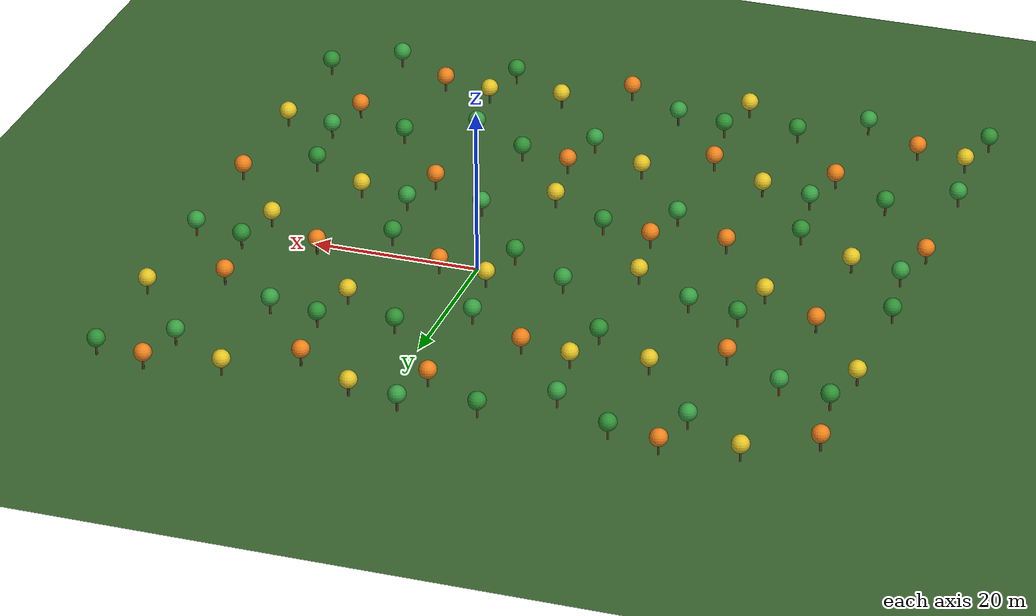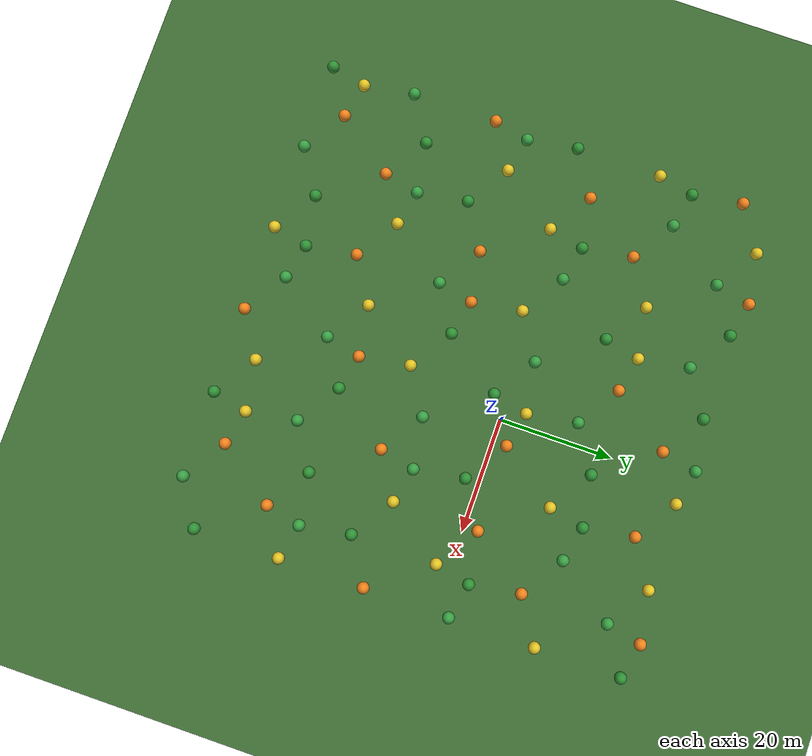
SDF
<sdf version="1.7">
 <world name="city_world">
  <model name="ground_plane">
   <static>true</static>
   <link name="link">
    <collision name="collision">
     <geometry><plane><normal>0 0 1</normal><size>300 300</size></plane></geometry>
     <surface><friction><ode><mu>100</mu><mu2>50</mu2></ode></friction></surface>
    </collision>
    <visual name="visual">
     <geometry><plane><normal>0 0 1</normal><size>300 300</size></plane></geometry>
     <material><ambient>0.24 0.42 0.20 1</ambient><diffuse>0.24 0.42 0.20 1</diffuse></material>
    </visual>
   </link>
  </model>
  <model name="city_trees">
   <static>true</static>
   <link name="link">
    <visual name="tree_trunk_0">
     <pose>-48.80 -47.40 0.84 0 0 0</pose>
     <geometry><cylinder><radius>0.12</radius><length>1.6</length></cylinder></geometry>
     <material><ambient>0.32 0.20 0.12 1</ambient><diffuse>0.32 0.20 0.12 1</diffuse></material>
    </visual>
    <visual name="tree_canopy_0">
     <pose>-48.80 -47.40 2.20 0 0 0</pose>
     <geometry><sphere><radius>1.05</radius></sphere></geometry>
     <material><ambient>0.16 0.52 0.18 1</ambient><diffuse>0.18 0.56 0.20 1</diffuse></material>
    </visual>
    <visual name="tree_trunk_1">
     <pose>-41.20 -42.60 0.84 0 0 0</pose>
     <geometry><cylinder><radius>0.12</radius><length>1.6</length></cylinder></geometry>
     <material><ambient>0.32 0.20 0.12 1</ambient><diffuse>0.32 0.20 0.12 1</diffuse></material>
    </visual>
    <visual name="tree_canopy_1">
     <pose>-41.20 -42.60 2.20 0 0 0</pose>
     <geometry><sphere><radius>1.05</radius></sphere></geometry>
     <material><ambient>0.88 0.46 0.08 1</ambient><diffuse>0.92 0.50 0.10 1</diffuse></material>
    </visual>
    <visual name="tree_trunk_2">
     <pose>-47.40 -41.20 0.84 0 0 0</pose>
     <geometry><cylinder><radius>0.12</radius><length>1.6</length></cylinder></geometry>
     <material><ambient>0.32 0.20 0.12 1</ambient><diffuse>0.32 0.20 0.12 1</diffuse></material>
    </visual>
    <visual name="tree_canopy_2">
     <pose>-47.40 -41.20 2.20 0 0 0</pose>
     <geometry><sphere><radius>1.05</radius></sphere></geometry>
     <material><ambient>0.85 0.72 0.12 1</ambient><diffuse>0.88 0.76 0.14 1</diffuse></material>
    </visual>
    <visual name="tree_trunk_3">
     <pose>-48.80 -32.40 0.84 0 0 0</pose>
     <geometry><cylinder><radius>0.12</radius><length>1.6</length></cylinder></geometry>
     <material><ambient>0.32 0.20 0.12 1</ambient><diffuse>0.32 0.20 0.12 1</diffuse></material>
    </visual>
    <visual name="tree_canopy_3">
     <pose>-48.80 -32.40 2.20 0 0 0</pose>
     <geometry><sphere><radius>1.05</radius></sphere></geometry>
     <material><ambient>0.20 0.58 0.24 1</ambient><diffuse>0.22 0.62 0.26 1</diffuse></material>
    </visual>
    <visual name="tree_trunk_4">
     <pose>-41.20 -27.60 0.84 0 0 0</pose>
     <geometry><cylinder><radius>0.12</radius><length>1.6</length></cylinder></geometry>
     <material><ambient>0.32 0.20 0.12 1</ambient><diffuse>0.32 0.20 0.12 1</diffuse></material>
    </visual>
    <visual name="tree_canopy_4">
     <pose>-41.20 -27.60 2.20 0 0 0</pose>
     <geometry><sphere><radius>1.05</radius></sphere></geometry>
     <material><ambient>0.16 0.52 0.18 1</ambient><diffuse>0.18 0.56 0.20 1</diffuse></material>
    </visual>
    <visual name="tree_trunk_5">
     <pose>-48.80 -17.40 0.84 0 0 0</pose>
     <geometry><cylinder><radius>0.12</radius><length>1.6</length></cylinder></geometry>
     <material><ambient>0.32 0.20 0.12 1</ambient><diffuse>0.32 0.20 0.12 1</diffuse></material>
    </visual>
    <visual name="tree_canopy_5">
     <pose>-48.80 -17.40 2.20 0 0 0</pose>
     <geometry><sphere><radius>1.05</radius></sphere></geometry>
     <material><ambient>0.88 0.46 0.08 1</ambient><diffuse>0.92 0.50 0.10 1</diffuse></material>
    </visual>
    <visual name="tree_trunk_6">
     <pose>-41.20 -12.60 0.84 0 0 0</pose>
     <geometry><cylinder><radius>0.12</radius><length>1.6</length></cylinder></geometry>
     <material><ambient>0.32 0.20 0.12 1</ambient><diffuse>0.32 0.20 0.12 1</diffuse></material>
    </visual>
    <visual name="tree_canopy_6">
     <pose>-41.20 -12.60 2.20 0 0 0</pose>
     <geometry><sphere><radius>1.05</radius></sphere></geometry>
     <material><ambient>0.85 0.72 0.12 1</ambient><diffuse>0.88 0.76 0.14 1</diffuse></material>
    </visual>
    <visual name="tree_trunk_7">
     <pose>-47.40 -11.20 0.84 0 0 0</pose>
     <geometry><cylinder><radius>0.12</radius><length>1.6</length></cylinder></geometry>
     <material><ambient>0.32 0.20 0.12 1</ambient><diffuse>0.32 0.20 0.12 1</diffuse></material>
    </visual>
    <visual name="tree_canopy_7">
     <pose>-47.40 -11.20 2.20 0 0 0</pose>
     <geometry><sphere><radius>1.05</radius></sphere></geometry>
     <material><ambient>0.20 0.58 0.24 1</ambient><diffuse>0.22 0.62 0.26 1</diffuse></material>
    </visual>
    <visual name="tree_trunk_8">
     <pose>-48.80 -2.40 0.84 0 0 0</pose>
     <geometry><cylinder><radius>0.12</radius><length>1.6</length></cylinder></geometry>
     <material><ambient>0.32 0.20 0.12 1</ambient><diffuse>0.32 0.20 0.12 1</diffuse></material>
    </visual>
    <visual name="tree_canopy_8">
     <pose>-48.80 -2.40 2.20 0 0 0</pose>
     <geometry><sphere><radius>1.05</radius></sphere></geometry>
     <material><ambient>0.16 0.52 0.18 1</ambient><diffuse>0.18 0.56 0.20 1</diffuse></material>
    </visual>
    <visual name="tree_trunk_9">
     <pose>-41.20 2.40 0.84 0 0 0</pose>
     <geometry><cylinder><radius>0.12</radius><length>1.6</length></cylinder></geometry>
     <material><ambient>0.32 0.20 0.12 1</ambient><diffuse>0.32 0.20 0.12 1</diffuse></material>
    </visual>
    <visual name="tree_canopy_9">
     <pose>-41.20 2.40 2.20 0 0 0</pose>
     <geometry><sphere><radius>1.05</radius></sphere></geometry>
     <material><ambient>0.88 0.46 0.08 1</ambient><diffuse>0.92 0.50 0.10 1</diffuse></material>
    </visual>
    <visual name="tree_trunk_10">
     <pose>-48.80 12.60 0.84 0 0 0</pose>
     <geometry><cylinder><radius>0.12</radius><length>1.6</length></cylinder></geometry>
     <material><ambient>0.32 0.20 0.12 1</ambient><diffuse>0.32 0.20 0.12 1</diffuse></material>
    </visual>
    <visual name="tree_canopy_10">
     <pose>-48.80 12.60 2.20 0 0 0</pose>
     <geometry><sphere><radius>1.05</radius></sphere></geometry>
     <material><ambient>0.85 0.72 0.12 1</ambient><diffuse>0.88 0.76 0.14 1</diffuse></material>
    </visual>
    <visual name="tree_trunk_11">
     <pose>-41.20 17.40 0.84 0 0 0</pose>
     <geometry><cylinder><radius>0.12</radius><length>1.6</length></cylinder></geometry>
     <material><ambient>0.32 0.20 0.12 1</ambient><diffuse>0.32 0.20 0.12 1</diffuse></material>
    </visual>
    <visual name="tree_canopy_11">
     <pose>-41.20 17.40 2.20 0 0 0</pose>
     <geometry><sphere><radius>1.05</radius></sphere></geometry>
     <material><ambient>0.20 0.58 0.24 1</ambient><diffuse>0.22 0.62 0.26 1</diffuse></material>
    </visual>
    <visual name="tree_trunk_12">
     <pose>-47.40 18.80 0.84 0 0 0</pose>
     <geometry><cylinder><radius>0.12</radius><length>1.6</length></cylinder></geometry>
     <material><ambient>0.32 0.20 0.12 1</ambient><diffuse>0.32 0.20 0.12 1</diffuse></material>
    </visual>
    <visual name="tree_canopy_12">
     <pose>-47.40 18.80 2.20 0 0 0</pose>
     <geometry><sphere><radius>1.05</radius></sphere></geometry>
     <material><ambient>0.16 0.52 0.18 1</ambient><diffuse>0.18 0.56 0.20 1</diffuse></material>
    </visual>
    <visual name="tree_trunk_13">
     <pose>-48.80 27.60 0.84 0 0 0</pose>
     <geometry><cylinder><radius>0.12</radius><length>1.6</length></cylinder></geometry>
     <material><ambient>0.32 0.20 0.12 1</ambient><diffuse>0.32 0.20 0.12 1</diffuse></material>
    </visual>
    <visual name="tree_canopy_13">
     <pose>-48.80 27.60 2.20 0 0 0</pose>
     <geometry><sphere><radius>1.05</radius></sphere></geometry>
     <material><ambient>0.88 0.46 0.08 1</ambient><diffuse>0.92 0.50 0.10 1</diffuse></material>
    </visual>
    <visual name="tree_trunk_14">
     <pose>-41.20 32.40 0.84 0 0 0</pose>
     <geometry><cylinder><radius>0.12</radius><length>1.6</length></cylinder></geometry>
     <material><ambient>0.32 0.20 0.12 1</ambient><diffuse>0.32 0.20 0.12 1</diffuse></material>
    </visual>
    <visual name="tree_canopy_14">
     <pose>-41.20 32.40 2.20 0 0 0</pose>
     <geometry><sphere><radius>1.05</radius></sphere></geometry>
     <material><ambient>0.85 0.72 0.12 1</ambient><diffuse>0.88 0.76 0.14 1</diffuse></material>
    </visual>
    <visual name="tree_trunk_15">
     <pose>-33.80 -47.40 0.84 0 0 0</pose>
     <geometry><cylinder><radius>0.12</radius><length>1.6</length></cylinder></geometry>
     <material><ambient>0.32 0.20 0.12 1</ambient><diffuse>0.32 0.20 0.12 1</diffuse></material>
    </visual>
    <visual name="tree_canopy_15">
     <pose>-33.80 -47.40 2.20 0 0 0</pose>
     <geometry><sphere><radius>1.05</radius></sphere></geometry>
     <material><ambient>0.20 0.58 0.24 1</ambient><diffuse>0.22 0.62 0.26 1</diffuse></material>
    </visual>
    <visual name="tree_trunk_16">
     <pose>-26.20 -42.60 0.84 0 0 0</pose>
     <geometry><cylinder><radius>0.12</radius><length>1.6</length></cylinder></geometry>
     <material><ambient>0.32 0.20 0.12 1</ambient><diffuse>0.32 0.20 0.12 1</diffuse></material>
    </visual>
    <visual name="tree_canopy_16">
     <pose>-26.20 -42.60 2.20 0 0 0</pose>
     <geometry><sphere><radius>1.05</radius></sphere></geometry>
     <material><ambient>0.16 0.52 0.18 1</ambient><diffuse>0.18 0.56 0.20 1</diffuse></material>
    </visual>
    <visual name="tree_trunk_17">
     <pose>-33.80 -32.40 0.84 0 0 0</pose>
     <geometry><cylinder><radius>0.12</radius><length>1.6</length></cylinder></geometry>
     <material><ambient>0.32 0.20 0.12 1</ambient><diffuse>0.32 0.20 0.12 1</diffuse></material>
    </visual>
    <visual name="tree_canopy_17">
     <pose>-33.80 -32.40 2.20 0 0 0</pose>
     <geometry><sphere><radius>1.05</radius></sphere></geometry>
     <material><ambient>0.88 0.46 0.08 1</ambient><diffuse>0.92 0.50 0.10 1</diffuse></material>
    </visual>
    <visual name="tree_trunk_18">
     <pose>-26.20 -27.60 0.84 0 0 0</pose>
     <geometry><cylinder><radius>0.12</radius><length>1.6</length></cylinder></geometry>
     <material><ambient>0.32 0.20 0.12 1</ambient><diffuse>0.32 0.20 0.12 1</diffuse></material>
    </visual>
    <visual name="tree_canopy_18">
     <pose>-26.20 -27.60 2.20 0 0 0</pose>
     <geometry><sphere><radius>1.05</radius></sphere></geometry>
     <material><ambient>0.85 0.72 0.12 1</ambient><diffuse>0.88 0.76 0.14 1</diffuse></material>
    </visual>
    <visual name="tree_trunk_19">
     <pose>-32.40 -26.20 0.84 0 0 0</pose>
     <geometry><cylinder><radius>0.12</radius><length>1.6</length></cylinder></geometry>
     <material><ambient>0.32 0.20 0.12 1</ambient><diffuse>0.32 0.20 0.12 1</diffuse></material>
    </visual>
    <visual name="tree_canopy_19">
     <pose>-32.40 -26.20 2.20 0 0 0</pose>
     <geometry><sphere><radius>1.05</radius></sphere></geometry>
     <material><ambient>0.20 0.58 0.24 1</ambient><diffuse>0.22 0.62 0.26 1</diffuse></material>
    </visual>
    <visual name="tree_trunk_20">
     <pose>-33.80 -17.40 0.84 0 0 0</pose>
     <geometry><cylinder><radius>0.12</radius><length>1.6</length></cylinder></geometry>
     <material><ambient>0.32 0.20 0.12 1</ambient><diffuse>0.32 0.20 0.12 1</diffuse></material>
    </visual>
    <visual name="tree_canopy_20">
     <pose>-33.80 -17.40 2.20 0 0 0</pose>
     <geometry><sphere><radius>1.05</radius></sphere></geometry>
     <material><ambient>0.16 0.52 0.18 1</ambient><diffuse>0.18 0.56 0.20 1</diffuse></material>
    </visual>
    <visual name="tree_trunk_21">
     <pose>-26.20 -12.60 0.84 0 0 0</pose>
     <geometry><cylinder><radius>0.12</radius><length>1.6</length></cylinder></geometry>
     <material><ambient>0.32 0.20 0.12 1</ambient><diffuse>0.32 0.20 0.12 1</diffuse></material>
    </visual>
    <visual name="tree_canopy_21">
     <pose>-26.20 -12.60 2.20 0 0 0</pose>
     <geometry><sphere><radius>1.05</radius></sphere></geometry>
     <material><ambient>0.88 0.46 0.08 1</ambient><diffuse>0.92 0.50 0.10 1</diffuse></material>
    </visual>
    <visual name="tree_trunk_22">
     <pose>-33.80 -2.40 0.84 0 0 0</pose>
     <geometry><cylinder><radius>0.12</radius><length>1.6</length></cylinder></geometry>
     <material><ambient>0.32 0.20 0.12 1</ambient><diffuse>0.32 0.20 0.12 1</diffuse></material>
    </visual>
    <visual name="tree_canopy_22">
     <pose>-33.80 -2.40 2.20 0 0 0</pose>
     <geometry><sphere><radius>1.05</radius></sphere></geometry>
     <material><ambient>0.85 0.72 0.12 1</ambient><diffuse>0.88 0.76 0.14 1</diffuse></material>
    </visual>
    <visual name="tree_trunk_23">
     <pose>-26.20 2.40 0.84 0 0 0</pose>
     <geometry><cylinder><radius>0.12</radius><length>1.6</length></cylinder></geometry>
     <material><ambient>0.32 0.20 0.12 1</ambient><diffuse>0.32 0.20 0.12 1</diffuse></material>
    </visual>
    <visual name="tree_canopy_23">
     <pose>-26.20 2.40 2.20 0 0 0</pose>
     <geometry><sphere><radius>1.05</radius></sphere></geometry>
     <material><ambient>0.20 0.58 0.24 1</ambient><diffuse>0.22 0.62 0.26 1</diffuse></material>
    </visual>
    <visual name="tree_trunk_24">
     <pose>-32.40 3.80 0.84 0 0 0</pose>
     <geometry><cylinder><radius>0.12</radius><length>1.6</length></cylinder></geometry>
     <material><ambient>0.32 0.20 0.12 1</ambient><diffuse>0.32 0.20 0.12 1</diffuse></material>
    </visual>
    <visual name="tree_canopy_24">
     <pose>-32.40 3.80 2.20 0 0 0</pose>
     <geometry><sphere><radius>1.05</radius></sphere></geometry>
     <material><ambient>0.16 0.52 0.18 1</ambient><diffuse>0.18 0.56 0.20 1</diffuse></material>
    </visual>
    <visual name="tree_trunk_25">
     <pose>-33.80 12.60 0.84 0 0 0</pose>
     <geometry><cylinder><radius>0.12</radius><length>1.6</length></cylinder></geometry>
     <material><ambient>0.32 0.20 0.12 1</ambient><diffuse>0.32 0.20 0.12 1</diffuse></material>
    </visual>
    <visual name="tree_canopy_25">
     <pose>-33.80 12.60 2.20 0 0 0</pose>
     <geometry><sphere><radius>1.05</radius></sphere></geometry>
     <material><ambient>0.88 0.46 0.08 1</ambient><diffuse>0.92 0.50 0.10 1</diffuse></material>
    </visual>
    <visual name="tree_trunk_26">
     <pose>-26.20 17.40 0.84 0 0 0</pose>
     <geometry><cylinder><radius>0.12</radius><length>1.6</length></cylinder></geometry>
     <material><ambient>0.32 0.20 0.12 1</ambient><diffuse>0.32 0.20 0.12 1</diffuse></material>
    </visual>
    <visual name="tree_canopy_26">
     <pose>-26.20 17.40 2.20 0 0 0</pose>
     <geometry><sphere><radius>1.05</radius></sphere></geometry>
     <material><ambient>0.85 0.72 0.12 1</ambient><diffuse>0.88 0.76 0.14 1</diffuse></material>
    </visual>
    <visual name="tree_trunk_27">
     <pose>-33.80 27.60 0.84 0 0 0</pose>
     <geometry><cylinder><radius>0.12</radius><length>1.6</length></cylinder></geometry>
     <material><ambient>0.32 0.20 0.12 1</ambient><diffuse>0.32 0.20 0.12 1</diffuse></material>
    </visual>
    <visual name="tree_canopy_27">
     <pose>-33.80 27.60 2.20 0 0 0</pose>
     <geometry><sphere><radius>1.05</radius></sphere></geometry>
     <material><ambient>0.20 0.58 0.24 1</ambient><diffuse>0.22 0.62 0.26 1</diffuse></material>
    </visual>
    <visual name="tree_trunk_28">
     <pose>-26.20 32.40 0.84 0 0 0</pose>
     <geometry><cylinder><radius>0.12</radius><length>1.6</length></cylinder></geometry>
     <material><ambient>0.32 0.20 0.12 1</ambient><diffuse>0.32 0.20 0.12 1</diffuse></material>
    </visual>
    <visual name="tree_canopy_28">
     <pose>-26.20 32.40 2.20 0 0 0</pose>
     <geometry><sphere><radius>1.05</radius></sphere></geometry>
     <material><ambient>0.16 0.52 0.18 1</ambient><diffuse>0.18 0.56 0.20 1</diffuse></material>
    </visual>
    <visual name="tree_trunk_29">
     <pose>-32.40 33.80 0.84 0 0 0</pose>
     <geometry><cylinder><radius>0.12</radius><length>1.6</length></cylinder></geometry>
     <material><ambient>0.32 0.20 0.12 1</ambient><diffuse>0.32 0.20 0.12 1</diffuse></material>
    </visual>
    <visual name="tree_canopy_29">
     <pose>-32.40 33.80 2.20 0 0 0</pose>
     <geometry><sphere><radius>1.05</radius></sphere></geometry>
     <material><ambient>0.88 0.46 0.08 1</ambient><diffuse>0.92 0.50 0.10 1</diffuse></material>
    </visual>
    <visual name="tree_trunk_30">
     <pose>-18.80 -47.40 0.84 0 0 0</pose>
     <geometry><cylinder><radius>0.12</radius><length>1.6</length></cylinder></geometry>
     <material><ambient>0.32 0.20 0.12 1</ambient><diffuse>0.32 0.20 0.12 1</diffuse></material>
    </visual>
    <visual name="tree_canopy_30">
     <pose>-18.80 -47.40 2.20 0 0 0</pose>
     <geometry><sphere><radius>1.05</radius></sphere></geometry>
     <material><ambient>0.85 0.72 0.12 1</ambient><diffuse>0.88 0.76 0.14 1</diffuse></material>
    </visual>
    <visual name="tree_trunk_31">
     <pose>-11.20 -42.60 0.84 0 0 0</pose>
     <geometry><cylinder><radius>0.12</radius><length>1.6</length></cylinder></geometry>
     <material><ambient>0.32 0.20 0.12 1</ambient><diffuse>0.32 0.20 0.12 1</diffuse></material>
    </visual>
    <visual name="tree_canopy_31">
     <pose>-11.20 -42.60 2.20 0 0 0</pose>
     <geometry><sphere><radius>1.05</radius></sphere></geometry>
     <material><ambient>0.20 0.58 0.24 1</ambient><diffuse>0.22 0.62 0.26 1</diffuse></material>
    </visual>
    <visual name="tree_trunk_32">
     <pose>-17.40 -41.20 0.84 0 0 0</pose>
     <geometry><cylinder><radius>0.12</radius><length>1.6</length></cylinder></geometry>
     <material><ambient>0.32 0.20 0.12 1</ambient><diffuse>0.32 0.20 0.12 1</diffuse></material>
    </visual>
    <visual name="tree_canopy_32">
     <pose>-17.40 -41.20 2.20 0 0 0</pose>
     <geometry><sphere><radius>1.05</radius></sphere></geometry>
     <material><ambient>0.16 0.52 0.18 1</ambient><diffuse>0.18 0.56 0.20 1</diffuse></material>
    </visual>
    <visual name="tree_trunk_33">
     <pose>-18.80 -32.40 0.84 0 0 0</pose>
     <geometry><cylinder><radius>0.12</radius><length>1.6</length></cylinder></geometry>
     <material><ambient>0.32 0.20 0.12 1</ambient><diffuse>0.32 0.20 0.12 1</diffuse></material>
    </visual>
    <visual name="tree_canopy_33">
     <pose>-18.80 -32.40 2.20 0 0 0</pose>
     <geometry><sphere><radius>1.05</radius></sphere></geometry>
     <material><ambient>0.88 0.46 0.08 1</ambient><diffuse>0.92 0.50 0.10 1</diffuse></material>
    </visual>
    <visual name="tree_trunk_34">
     <pose>-11.20 -27.60 0.84 0 0 0</pose>
     <geometry><cylinder><radius>0.12</radius><length>1.6</length></cylinder></geometry>
     <material><ambient>0.32 0.20 0.12 1</ambient><diffuse>0.32 0.20 0.12 1</diffuse></material>
    </visual>
    <visual name="tree_canopy_34">
     <pose>-11.20 -27.60 2.20 0 0 0</pose>
     <geometry><sphere><radius>1.05</radius></sphere></geometry>
     <material><ambient>0.85 0.72 0.12 1</ambient><diffuse>0.88 0.76 0.14 1</diffuse></material>
    </visual>
    <visual name="tree_trunk_35">
     <pose>-18.80 -17.40 0.84 0 0 0</pose>
     <geometry><cylinder><radius>0.12</radius><length>1.6</length></cylinder></geometry>
     <material><ambient>0.32 0.20 0.12 1</ambient><diffuse>0.32 0.20 0.12 1</diffuse></material>
    </visual>
    <visual name="tree_canopy_35">
     <pose>-18.80 -17.40 2.20 0 0 0</pose>
     <geometry><sphere><radius>1.05</radius></sphere></geometry>
     <material><ambient>0.20 0.58 0.24 1</ambient><diffuse>0.22 0.62 0.26 1</diffuse></material>
    </visual>
    <visual name="tree_trunk_36">
     <pose>-11.20 -12.60 0.84 0 0 0</pose>
     <geometry><cylinder><radius>0.12</radius><length>1.6</length></cylinder></geometry>
     <material><ambient>0.32 0.20 0.12 1</ambient><diffuse>0.32 0.20 0.12 1</diffuse></material>
    </visual>
    <visual name="tree_canopy_36">
     <pose>-11.20 -12.60 2.20 0 0 0</pose>
     <geometry><sphere><radius>1.05</radius></sphere></geometry>
     <material><ambient>0.16 0.52 0.18 1</ambient><diffuse>0.18 0.56 0.20 1</diffuse></material>
    </visual>
    <visual name="tree_trunk_37">
     <pose>-17.40 -11.20 0.84 0 0 0</pose>
     <geometry><cylinder><radius>0.12</radius><length>1.6</length></cylinder></geometry>
     <material><ambient>0.32 0.20 0.12 1</ambient><diffuse>0.32 0.20 0.12 1</diffuse></material>
    </visual>
    <visual name="tree_canopy_37">
     <pose>-17.40 -11.20 2.20 0 0 0</pose>
     <geometry><sphere><radius>1.05</radius></sphere></geometry>
     <material><ambient>0.88 0.46 0.08 1</ambient><diffuse>0.92 0.50 0.10 1</diffuse></material>
    </visual>
    <visual name="tree_trunk_38">
     <pose>-18.80 -2.40 0.84 0 0 0</pose>
     <geometry><cylinder><radius>0.12</radius><length>1.6</length></cylinder></geometry>
     <material><ambient>0.32 0.20 0.12 1</ambient><diffuse>0.32 0.20 0.12 1</diffuse></material>
    </visual>
    <visual name="tree_canopy_38">
     <pose>-18.80 -2.40 2.20 0 0 0</pose>
     <geometry><sphere><radius>1.05</radius></sphere></geometry>
     <material><ambient>0.85 0.72 0.12 1</ambient><diffuse>0.88 0.76 0.14 1</diffuse></material>
    </visual>
    <visual name="tree_trunk_39">
     <pose>-11.20 2.40 0.84 0 0 0</pose>
     <geometry><cylinder><radius>0.12</radius><length>1.6</length></cylinder></geometry>
     <material><ambient>0.32 0.20 0.12 1</ambient><diffuse>0.32 0.20 0.12 1</diffuse></material>
    </visual>
    <visual name="tree_canopy_39">
     <pose>-11.20 2.40 2.20 0 0 0</pose>
     <geometry><sphere><radius>1.05</radius></sphere></geometry>
     <material><ambient>0.20 0.58 0.24 1</ambient><diffuse>0.22 0.62 0.26 1</diffuse></material>
    </visual>
    <visual name="tree_trunk_40">
     <pose>-18.80 12.60 0.84 0 0 0</pose>
     <geometry><cylinder><radius>0.12</radius><length>1.6</length></cylinder></geometry>
     <material><ambient>0.32 0.20 0.12 1</ambient><diffuse>0.32 0.20 0.12 1</diffuse></material>
    </visual>
    <visual name="tree_canopy_40">
     <pose>-18.80 12.60 2.20 0 0 0</pose>
     <geometry><sphere><radius>1.05</radius></sphere></geometry>
     <material><ambient>0.16 0.52 0.18 1</ambient><diffuse>0.18 0.56 0.20 1</diffuse></material>
    </visual>
    <visual name="tree_trunk_41">
     <pose>-11.20 17.40 0.84 0 0 0</pose>
     <geometry><cylinder><radius>0.12</radius><length>1.6</length></cylinder></geometry>
     <material><ambient>0.32 0.20 0.12 1</ambient><diffuse>0.32 0.20 0.12 1</diffuse></material>
    </visual>
    <visual name="tree_canopy_41">
     <pose>-11.20 17.40 2.20 0 0 0</pose>
     <geometry><sphere><radius>1.05</radius></sphere></geometry>
     <material><ambient>0.88 0.46 0.08 1</ambient><diffuse>0.92 0.50 0.10 1</diffuse></material>
    </visual>
    <visual name="tree_trunk_42">
     <pose>-17.40 18.80 0.84 0 0 0</pose>
     <geometry><cylinder><radius>0.12</radius><length>1.6</length></cylinder></geometry>
     <material><ambient>0.32 0.20 0.12 1</ambient><diffuse>0.32 0.20 0.12 1</diffuse></material>
    </visual>
    <visual name="tree_canopy_42">
     <pose>-17.40 18.80 2.20 0 0 0</pose>
     <geometry><sphere><radius>1.05</radius></sphere></geometry>
     <material><ambient>0.85 0.72 0.12 1</ambient><diffuse>0.88 0.76 0.14 1</diffuse></material>
    </visual>
    <visual name="tree_trunk_43">
     <pose>-18.80 27.60 0.84 0 0 0</pose>
     <geometry><cylinder><radius>0.12</radius><length>1.6</length></cylinder></geometry>
     <material><ambient>0.32 0.20 0.12 1</ambient><diffuse>0.32 0.20 0.12 1</diffuse></material>
    </visual>
    <visual name="tree_canopy_43">
     <pose>-18.80 27.60 2.20 0 0 0</pose>
     <geometry><sphere><radius>1.05</radius></sphere></geometry>
     <material><ambient>0.20 0.58 0.24 1</ambient><diffuse>0.22 0.62 0.26 1</diffuse></material>
    </visual>
    <visual name="tree_trunk_44">
     <pose>-11.20 32.40 0.84 0 0 0</pose>
     <geometry><cylinder><radius>0.12</radius><length>1.6</length></cylinder></geometry>
     <material><ambient>0.32 0.20 0.12 1</ambient><diffuse>0.32 0.20 0.12 1</diffuse></material>
    </visual>
    <visual name="tree_canopy_44">
     <pose>-11.20 32.40 2.20 0 0 0</pose>
     <geometry><sphere><radius>1.05</radius></sphere></geometry>
     <material><ambient>0.16 0.52 0.18 1</ambient><diffuse>0.18 0.56 0.20 1</diffuse></material>
    </visual>
    <visual name="tree_trunk_45">
     <pose>-3.80 -47.40 0.84 0 0 0</pose>
     <geometry><cylinder><radius>0.12</radius><length>1.6</length></cylinder></geometry>
     <material><ambient>0.32 0.20 0.12 1</ambient><diffuse>0.32 0.20 0.12 1</diffuse></material>
    </visual>
    <visual name="tree_canopy_45">
     <pose>-3.80 -47.40 2.20 0 0 0</pose>
     <geometry><sphere><radius>1.05</radius></sphere></geometry>
     <material><ambient>0.88 0.46 0.08 1</ambient><diffuse>0.92 0.50 0.10 1</diffuse></material>
    </visual>
    <visual name="tree_trunk_46">
     <pose>3.80 -42.60 0.84 0 0 0</pose>
     <geometry><cylinder><radius>0.12</radius><length>1.6</length></cylinder></geometry>
     <material><ambient>0.32 0.20 0.12 1</ambient><diffuse>0.32 0.20 0.12 1</diffuse></material>
    </visual>
    <visual name="tree_canopy_46">
     <pose>3.80 -42.60 2.20 0 0 0</pose>
     <geometry><sphere><radius>1.05</radius></sphere></geometry>
     <material><ambient>0.85 0.72 0.12 1</ambient><diffuse>0.88 0.76 0.14 1</diffuse></material>
    </visual>
    <visual name="tree_trunk_47">
     <pose>-3.80 -32.40 0.84 0 0 0</pose>
     <geometry><cylinder><radius>0.12</radius><length>1.6</length></cylinder></geometry>
     <material><ambient>0.32 0.20 0.12 1</ambient><diffuse>0.32 0.20 0.12 1</diffuse></material>
    </visual>
    <visual name="tree_canopy_47">
     <pose>-3.80 -32.40 2.20 0 0 0</pose>
     <geometry><sphere><radius>1.05</radius></sphere></geometry>
     <material><ambient>0.20 0.58 0.24 1</ambient><diffuse>0.22 0.62 0.26 1</diffuse></material>
    </visual>
    <visual name="tree_trunk_48">
     <pose>3.80 -27.60 0.84 0 0 0</pose>
     <geometry><cylinder><radius>0.12</radius><length>1.6</length></cylinder></geometry>
     <material><ambient>0.32 0.20 0.12 1</ambient><diffuse>0.32 0.20 0.12 1</diffuse></material>
    </visual>
    <visual name="tree_canopy_48">
     <pose>3.80 -27.60 2.20 0 0 0</pose>
     <geometry><sphere><radius>1.05</radius></sphere></geometry>
     <material><ambient>0.16 0.52 0.18 1</ambient><diffuse>0.18 0.56 0.20 1</diffuse></material>
    </visual>
    <visual name="tree_trunk_49">
     <pose>-2.40 -26.20 0.84 0 0 0</pose>
     <geometry><cylinder><radius>0.12</radius><length>1.6</length></cylinder></geometry>
     <material><ambient>0.32 0.20 0.12 1</ambient><diffuse>0.32 0.20 0.12 1</diffuse></material>
    </visual>
    <visual name="tree_canopy_49">
     <pose>-2.40 -26.20 2.20 0 0 0</pose>
     <geometry><sphere><radius>1.05</radius></sphere></geometry>
     <material><ambient>0.88 0.46 0.08 1</ambient><diffuse>0.92 0.50 0.10 1</diffuse></material>
    </visual>
    <visual name="tree_trunk_50">
     <pose>-3.80 -17.40 0.84 0 0 0</pose>
     <geometry><cylinder><radius>0.12</radius><length>1.6</length></cylinder></geometry>
     <material><ambient>0.32 0.20 0.12 1</ambient><diffuse>0.32 0.20 0.12 1</diffuse></material>
    </visual>
    <visual name="tree_canopy_50">
     <pose>-3.80 -17.40 2.20 0 0 0</pose>
     <geometry><sphere><radius>1.05</radius></sphere></geometry>
     <material><ambient>0.85 0.72 0.12 1</ambient><diffuse>0.88 0.76 0.14 1</diffuse></material>
    </visual>
    <visual name="tree_trunk_51">
     <pose>3.80 -12.60 0.84 0 0 0</pose>
     <geometry><cylinder><radius>0.12</radius><length>1.6</length></cylinder></geometry>
     <material><ambient>0.32 0.20 0.12 1</ambient><diffuse>0.32 0.20 0.12 1</diffuse></material>
    </visual>
    <visual name="tree_canopy_51">
     <pose>3.80 -12.60 2.20 0 0 0</pose>
     <geometry><sphere><radius>1.05</radius></sphere></geometry>
     <material><ambient>0.20 0.58 0.24 1</ambient><diffuse>0.22 0.62 0.26 1</diffuse></material>
    </visual>
    <visual name="tree_trunk_52">
     <pose>-3.80 -2.40 0.84 0 0 0</pose>
     <geometry><cylinder><radius>0.12</radius><length>1.6</length></cylinder></geometry>
     <material><ambient>0.32 0.20 0.12 1</ambient><diffuse>0.32 0.20 0.12 1</diffuse></material>
    </visual>
    <visual name="tree_canopy_52">
     <pose>-3.80 -2.40 2.20 0 0 0</pose>
     <geometry><sphere><radius>1.05</radius></sphere></geometry>
     <material><ambient>0.16 0.52 0.18 1</ambient><diffuse>0.18 0.56 0.20 1</diffuse></material>
    </visual>
    <visual name="tree_trunk_53">
     <pose>3.80 2.40 0.84 0 0 0</pose>
     <geometry><cylinder><radius>0.12</radius><length>1.6</length></cylinder></geometry>
     <material><ambient>0.32 0.20 0.12 1</ambient><diffuse>0.32 0.20 0.12 1</diffuse></material>
    </visual>
    <visual name="tree_canopy_53">
     <pose>3.80 2.40 2.20 0 0 0</pose>
     <geometry><sphere><radius>1.05</radius></sphere></geometry>
     <material><ambient>0.88 0.46 0.08 1</ambient><diffuse>0.92 0.50 0.10 1</diffuse></material>
    </visual>
    <visual name="tree_trunk_54">
     <pose>-2.40 3.80 0.84 0 0 0</pose>
     <geometry><cylinder><radius>0.12</radius><length>1.6</length></cylinder></geometry>
     <material><ambient>0.32 0.20 0.12 1</ambient><diffuse>0.32 0.20 0.12 1</diffuse></material>
    </visual>
    <visual name="tree_canopy_54">
     <pose>-2.40 3.80 2.20 0 0 0</pose>
     <geometry><sphere><radius>1.05</radius></sphere></geometry>
     <material><ambient>0.85 0.72 0.12 1</ambient><diffuse>0.88 0.76 0.14 1</diffuse></material>
    </visual>
    <visual name="tree_trunk_55">
     <pose>-3.80 12.60 0.84 0 0 0</pose>
     <geometry><cylinder><radius>0.12</radius><length>1.6</length></cylinder></geometry>
     <material><ambient>0.32 0.20 0.12 1</ambient><diffuse>0.32 0.20 0.12 1</diffuse></material>
    </visual>
    <visual name="tree_canopy_55">
     <pose>-3.80 12.60 2.20 0 0 0</pose>
     <geometry><sphere><radius>1.05</radius></sphere></geometry>
     <material><ambient>0.20 0.58 0.24 1</ambient><diffuse>0.22 0.62 0.26 1</diffuse></material>
    </visual>
    <visual name="tree_trunk_56">
     <pose>3.80 17.40 0.84 0 0 0</pose>
     <geometry><cylinder><radius>0.12</radius><length>1.6</length></cylinder></geometry>
     <material><ambient>0.32 0.20 0.12 1</ambient><diffuse>0.32 0.20 0.12 1</diffuse></material>
    </visual>
    <visual name="tree_canopy_56">
     <pose>3.80 17.40 2.20 0 0 0</pose>
     <geometry><sphere><radius>1.05</radius></sphere></geometry>
     <material><ambient>0.16 0.52 0.18 1</ambient><diffuse>0.18 0.56 0.20 1</diffuse></material>
    </visual>
    <visual name="tree_trunk_57">
     <pose>-3.80 27.60 0.84 0 0 0</pose>
     <geometry><cylinder><radius>0.12</radius><length>1.6</length></cylinder></geometry>
     <material><ambient>0.32 0.20 0.12 1</ambient><diffuse>0.32 0.20 0.12 1</diffuse></material>
    </visual>
    <visual name="tree_canopy_57">
     <pose>-3.80 27.60 2.20 0 0 0</pose>
     <geometry><sphere><radius>1.05</radius></sphere></geometry>
     <material><ambient>0.88 0.46 0.08 1</ambient><diffuse>0.92 0.50 0.10 1</diffuse></material>
    </visual>
    <visual name="tree_trunk_58">
     <pose>3.80 32.40 0.84 0 0 0</pose>
     <geometry><cylinder><radius>0.12</radius><length>1.6</length></cylinder></geometry>
     <material><ambient>0.32 0.20 0.12 1</ambient><diffuse>0.32 0.20 0.12 1</diffuse></material>
    </visual>
    <visual name="tree_canopy_58">
     <pose>3.80 32.40 2.20 0 0 0</pose>
     <geometry><sphere><radius>1.05</radius></sphere></geometry>
     <material><ambient>0.85 0.72 0.12 1</ambient><diffuse>0.88 0.76 0.14 1</diffuse></material>
    </visual>
    <visual name="tree_trunk_59">
     <pose>-2.40 33.80 0.84 0 0 0</pose>
     <geometry><cylinder><radius>0.12</radius><length>1.6</length></cylinder></geometry>
     <material><ambient>0.32 0.20 0.12 1</ambient><diffuse>0.32 0.20 0.12 1</diffuse></material>
    </visual>
    <visual name="tree_canopy_59">
     <pose>-2.40 33.80 2.20 0 0 0</pose>
     <geometry><sphere><radius>1.05</radius></sphere></geometry>
     <material><ambient>0.20 0.58 0.24 1</ambient><diffuse>0.22 0.62 0.26 1</diffuse></material>
    </visual>
    <visual name="tree_trunk_60">
     <pose>11.20 -47.40 0.84 0 0 0</pose>
     <geometry><cylinder><radius>0.12</radius><length>1.6</length></cylinder></geometry>
     <material><ambient>0.32 0.20 0.12 1</ambient><diffuse>0.32 0.20 0.12 1</diffuse></material>
    </visual>
    <visual name="tree_canopy_60">
     <pose>11.20 -47.40 2.20 0 0 0</pose>
     <geometry><sphere><radius>1.05</radius></sphere></geometry>
     <material><ambient>0.16 0.52 0.18 1</ambient><diffuse>0.18 0.56 0.20 1</diffuse></material>
    </visual>
    <visual name="tree_trunk_61">
     <pose>18.80 -42.60 0.84 0 0 0</pose>
     <geometry><cylinder><radius>0.12</radius><length>1.6</length></cylinder></geometry>
     <material><ambient>0.32 0.20 0.12 1</ambient><diffuse>0.32 0.20 0.12 1</diffuse></material>
    </visual>
    <visual name="tree_canopy_61">
     <pose>18.80 -42.60 2.20 0 0 0</pose>
     <geometry><sphere><radius>1.05</radius></sphere></geometry>
     <material><ambient>0.88 0.46 0.08 1</ambient><diffuse>0.92 0.50 0.10 1</diffuse></material>
    </visual>
    <visual name="tree_trunk_62">
     <pose>12.60 -41.20 0.84 0 0 0</pose>
     <geometry><cylinder><radius>0.12</radius><length>1.6</length></cylinder></geometry>
     <material><ambient>0.32 0.20 0.12 1</ambient><diffuse>0.32 0.20 0.12 1</diffuse></material>
    </visual>
    <visual name="tree_canopy_62">
     <pose>12.60 -41.20 2.20 0 0 0</pose>
     <geometry><sphere><radius>1.05</radius></sphere></geometry>
     <material><ambient>0.85 0.72 0.12 1</ambient><diffuse>0.88 0.76 0.14 1</diffuse></material>
    </visual>
    <visual name="tree_trunk_63">
     <pose>11.20 -32.40 0.84 0 0 0</pose>
     <geometry><cylinder><radius>0.12</radius><length>1.6</length></cylinder></geometry>
     <material><ambient>0.32 0.20 0.12 1</ambient><diffuse>0.32 0.20 0.12 1</diffuse></material>
    </visual>
    <visual name="tree_canopy_63">
     <pose>11.20 -32.40 2.20 0 0 0</pose>
     <geometry><sphere><radius>1.05</radius></sphere></geometry>
     <material><ambient>0.20 0.58 0.24 1</ambient><diffuse>0.22 0.62 0.26 1</diffuse></material>
    </visual>
    <visual name="tree_trunk_64">
     <pose>18.80 -27.60 0.84 0 0 0</pose>
     <geometry><cylinder><radius>0.12</radius><length>1.6</length></cylinder></geometry>
     <material><ambient>0.32 0.20 0.12 1</ambient><diffuse>0.32 0.20 0.12 1</diffuse></material>
    </visual>
    <visual name="tree_canopy_64">
     <pose>18.80 -27.60 2.20 0 0 0</pose>
     <geometry><sphere><radius>1.05</radius></sphere></geometry>
     <material><ambient>0.16 0.52 0.18 1</ambient><diffuse>0.18 0.56 0.20 1</diffuse></material>
    </visual>
    <visual name="tree_trunk_65">
     <pose>11.20 -17.40 0.84 0 0 0</pose>
     <geometry><cylinder><radius>0.12</radius><length>1.6</length></cylinder></geometry>
     <material><ambient>0.32 0.20 0.12 1</ambient><diffuse>0.32 0.20 0.12 1</diffuse></material>
    </visual>
    <visual name="tree_canopy_65">
     <pose>11.20 -17.40 2.20 0 0 0</pose>
     <geometry><sphere><radius>1.05</radius></sphere></geometry>
     <material><ambient>0.88 0.46 0.08 1</ambient><diffuse>0.92 0.50 0.10 1</diffuse></material>
    </visual>
    <visual name="tree_trunk_66">
     <pose>18.80 -12.60 0.84 0 0 0</pose>
     <geometry><cylinder><radius>0.12</radius><length>1.6</length></cylinder></geometry>
     <material><ambient>0.32 0.20 0.12 1</ambient><diffuse>0.32 0.20 0.12 1</diffuse></material>
    </visual>
    <visual name="tree_canopy_66">
     <pose>18.80 -12.60 2.20 0 0 0</pose>
     <geometry><sphere><radius>1.05</radius></sphere></geometry>
     <material><ambient>0.85 0.72 0.12 1</ambient><diffuse>0.88 0.76 0.14 1</diffuse></material>
    </visual>
    <visual name="tree_trunk_67">
     <pose>12.60 -11.20 0.84 0 0 0</pose>
     <geometry><cylinder><radius>0.12</radius><length>1.6</length></cylinder></geometry>
     <material><ambient>0.32 0.20 0.12 1</ambient><diffuse>0.32 0.20 0.12 1</diffuse></material>
    </visual>
    <visual name="tree_canopy_67">
     <pose>12.60 -11.20 2.20 0 0 0</pose>
     <geometry><sphere><radius>1.05</radius></sphere></geometry>
     <material><ambient>0.20 0.58 0.24 1</ambient><diffuse>0.22 0.62 0.26 1</diffuse></material>
    </visual>
    <visual name="tree_trunk_68">
     <pose>11.20 -2.40 0.84 0 0 0</pose>
     <geometry><cylinder><radius>0.12</radius><length>1.6</length></cylinder></geometry>
     <material><ambient>0.32 0.20 0.12 1</ambient><diffuse>0.32 0.20 0.12 1</diffuse></material>
    </visual>
    <visual name="tree_canopy_68">
     <pose>11.20 -2.40 2.20 0 0 0</pose>
     <geometry><sphere><radius>1.05</radius></sphere></geometry>
     <material><ambient>0.16 0.52 0.18 1</ambient><diffuse>0.18 0.56 0.20 1</diffuse></material>
    </visual>
    <visual name="tree_trunk_69">
     <pose>18.80 2.40 0.84 0 0 0</pose>
     <geometry><cylinder><radius>0.12</radius><length>1.6</length></cylinder></geometry>
     <material><ambient>0.32 0.20 0.12 1</ambient><diffuse>0.32 0.20 0.12 1</diffuse></material>
    </visual>
    <visual name="tree_canopy_69">
     <pose>18.80 2.40 2.20 0 0 0</pose>
     <geometry><sphere><radius>1.05</radius></sphere></geometry>
     <material><ambient>0.88 0.46 0.08 1</ambient><diffuse>0.92 0.50 0.10 1</diffuse></material>
    </visual>
    <visual name="tree_trunk_70">
     <pose>11.20 12.60 0.84 0 0 0</pose>
     <geometry><cylinder><radius>0.12</radius><length>1.6</length></cylinder></geometry>
     <material><ambient>0.32 0.20 0.12 1</ambient><diffuse>0.32 0.20 0.12 1</diffuse></material>
    </visual>
    <visual name="tree_canopy_70">
     <pose>11.20 12.60 2.20 0 0 0</pose>
     <geometry><sphere><radius>1.05</radius></sphere></geometry>
     <material><ambient>0.85 0.72 0.12 1</ambient><diffuse>0.88 0.76 0.14 1</diffuse></material>
    </visual>
    <visual name="tree_trunk_71">
     <pose>18.80 17.40 0.84 0 0 0</pose>
     <geometry><cylinder><radius>0.12</radius><length>1.6</length></cylinder></geometry>
     <material><ambient>0.32 0.20 0.12 1</ambient><diffuse>0.32 0.20 0.12 1</diffuse></material>
    </visual>
    <visual name="tree_canopy_71">
     <pose>18.80 17.40 2.20 0 0 0</pose>
     <geometry><sphere><radius>1.05</radius></sphere></geometry>
     <material><ambient>0.20 0.58 0.24 1</ambient><diffuse>0.22 0.62 0.26 1</diffuse></material>
    </visual>
    <visual name="tree_trunk_72">
     <pose>12.60 18.80 0.84 0 0 0</pose>
     <geometry><cylinder><radius>0.12</radius><length>1.6</length></cylinder></geometry>
     <material><ambient>0.32 0.20 0.12 1</ambient><diffuse>0.32 0.20 0.12 1</diffuse></material>
    </visual>
    <visual name="tree_canopy_72">
     <pose>12.60 18.80 2.20 0 0 0</pose>
     <geometry><sphere><radius>1.05</radius></sphere></geometry>
     <material><ambient>0.16 0.52 0.18 1</ambient><diffuse>0.18 0.56 0.20 1</diffuse></material>
    </visual>
    <visual name="tree_trunk_73">
     <pose>11.20 27.60 0.84 0 0 0</pose>
     <geometry><cylinder><radius>0.12</radius><length>1.6</length></cylinder></geometry>
     <material><ambient>0.32 0.20 0.12 1</ambient><diffuse>0.32 0.20 0.12 1</diffuse></material>
    </visual>
    <visual name="tree_canopy_73">
     <pose>11.20 27.60 2.20 0 0 0</pose>
     <geometry><sphere><radius>1.05</radius></sphere></geometry>
     <material><ambient>0.88 0.46 0.08 1</ambient><diffuse>0.92 0.50 0.10 1</diffuse></material>
    </visual>
    <visual name="tree_trunk_74">
     <pose>18.80 32.40 0.84 0 0 0</pose>
     <geometry><cylinder><radius>0.12</radius><length>1.6</length></cylinder></geometry>
     <material><ambient>0.32 0.20 0.12 1</ambient><diffuse>0.32 0.20 0.12 1</diffuse></material>
    </visual>
    <visual name="tree_canopy_74">
     <pose>18.80 32.40 2.20 0 0 0</pose>
     <geometry><sphere><radius>1.05</radius></sphere></geometry>
     <material><ambient>0.85 0.72 0.12 1</ambient><diffuse>0.88 0.76 0.14 1</diffuse></material>
    </visual>
    <visual name="tree_trunk_75">
     <pose>26.20 -47.40 0.84 0 0 0</pose>
     <geometry><cylinder><radius>0.12</radius><length>1.6</length></cylinder></geometry>
     <material><ambient>0.32 0.20 0.12 1</ambient><diffuse>0.32 0.20 0.12 1</diffuse></material>
    </visual>
    <visual name="tree_canopy_75">
     <pose>26.20 -47.40 2.20 0 0 0</pose>
     <geometry><sphere><radius>1.05</radius></sphere></geometry>
     <material><ambient>0.20 0.58 0.24 1</ambient><diffuse>0.22 0.62 0.26 1</diffuse></material>
    </visual>
    <visual name="tree_trunk_76">
     <pose>33.80 -42.60 0.84 0 0 0</pose>
     <geometry><cylinder><radius>0.12</radius><length>1.6</length></cylinder></geometry>
     <material><ambient>0.32 0.20 0.12 1</ambient><diffuse>0.32 0.20 0.12 1</diffuse></material>
    </visual>
    <visual name="tree_canopy_76">
     <pose>33.80 -42.60 2.20 0 0 0</pose>
     <geometry><sphere><radius>1.05</radius></sphere></geometry>
     <material><ambient>0.16 0.52 0.18 1</ambient><diffuse>0.18 0.56 0.20 1</diffuse></material>
    </visual>
    <visual name="tree_trunk_77">
     <pose>26.20 -32.40 0.84 0 0 0</pose>
     <geometry><cylinder><radius>0.12</radius><length>1.6</length></cylinder></geometry>
     <material><ambient>0.32 0.20 0.12 1</ambient><diffuse>0.32 0.20 0.12 1</diffuse></material>
    </visual>
    <visual name="tree_canopy_77">
     <pose>26.20 -32.40 2.20 0 0 0</pose>
     <geometry><sphere><radius>1.05</radius></sphere></geometry>
     <material><ambient>0.88 0.46 0.08 1</ambient><diffuse>0.92 0.50 0.10 1</diffuse></material>
    </visual>
    <visual name="tree_trunk_78">
     <pose>33.80 -27.60 0.84 0 0 0</pose>
     <geometry><cylinder><radius>0.12</radius><length>1.6</length></cylinder></geometry>
     <material><ambient>0.32 0.20 0.12 1</ambient><diffuse>0.32 0.20 0.12 1</diffuse></material>
    </visual>
    <visual name="tree_canopy_78">
     <pose>33.80 -27.60 2.20 0 0 0</pose>
     <geometry><sphere><radius>1.05</radius></sphere></geometry>
     <material><ambient>0.85 0.72 0.12 1</ambient><diffuse>0.88 0.76 0.14 1</diffuse></material>
    </visual>
    <visual name="tree_trunk_79">
     <pose>27.60 -26.20 0.84 0 0 0</pose>
     <geometry><cylinder><radius>0.12</radius><length>1.6</length></cylinder></geometry>
     <material><ambient>0.32 0.20 0.12 1</ambient><diffuse>0.32 0.20 0.12 1</diffuse></material>
    </visual>
    <visual name="tree_canopy_79">
     <pose>27.60 -26.20 2.20 0 0 0</pose>
     <geometry><sphere><radius>1.05</radius></sphere></geometry>
     <material><ambient>0.20 0.58 0.24 1</ambient><diffuse>0.22 0.62 0.26 1</diffuse></material>
    </visual>
    <visual name="tree_trunk_80">
     <pose>26.20 -17.40 0.84 0 0 0</pose>
     <geometry><cylinder><radius>0.12</radius><length>1.6</length></cylinder></geometry>
     <material><ambient>0.32 0.20 0.12 1</ambient><diffuse>0.32 0.20 0.12 1</diffuse></material>
    </visual>
    <visual name="tree_canopy_80">
     <pose>26.20 -17.40 2.20 0 0 0</pose>
     <geometry><sphere><radius>1.05</radius></sphere></geometry>
     <material><ambient>0.16 0.52 0.18 1</ambient><diffuse>0.18 0.56 0.20 1</diffuse></material>
    </visual>
    <visual name="tree_trunk_81">
     <pose>33.80 -12.60 0.84 0 0 0</pose>
     <geometry><cylinder><radius>0.12</radius><length>1.6</length></cylinder></geometry>
     <material><ambient>0.32 0.20 0.12 1</ambient><diffuse>0.32 0.20 0.12 1</diffuse></material>
    </visual>
    <visual name="tree_canopy_81">
     <pose>33.80 -12.60 2.20 0 0 0</pose>
     <geometry><sphere><radius>1.05</radius></sphere></geometry>
     <material><ambient>0.88 0.46 0.08 1</ambient><diffuse>0.92 0.50 0.10 1</diffuse></material>
    </visual>
    <visual name="tree_trunk_82">
     <pose>26.20 -2.40 0.84 0 0 0</pose>
     <geometry><cylinder><radius>0.12</radius><length>1.6</length></cylinder></geometry>
     <material><ambient>0.32 0.20 0.12 1</ambient><diffuse>0.32 0.20 0.12 1</diffuse></material>
    </visual>
    <visual name="tree_canopy_82">
     <pose>26.20 -2.40 2.20 0 0 0</pose>
     <geometry><sphere><radius>1.05</radius></sphere></geometry>
     <material><ambient>0.85 0.72 0.12 1</ambient><diffuse>0.88 0.76 0.14 1</diffuse></material>
    </visual>
    <visual name="tree_trunk_83">
     <pose>33.80 2.40 0.84 0 0 0</pose>
     <geometry><cylinder><radius>0.12</radius><length>1.6</length></cylinder></geometry>
     <material><ambient>0.32 0.20 0.12 1</ambient><diffuse>0.32 0.20 0.12 1</diffuse></material>
    </visual>
    <visual name="tree_canopy_83">
     <pose>33.80 2.40 2.20 0 0 0</pose>
     <geometry><sphere><radius>1.05</radius></sphere></geometry>
     <material><ambient>0.20 0.58 0.24 1</ambient><diffuse>0.22 0.62 0.26 1</diffuse></material>
    </visual>
    <visual name="tree_trunk_84">
     <pose>27.60 3.80 0.84 0 0 0</pose>
     <geometry><cylinder><radius>0.12</radius><length>1.6</length></cylinder></geometry>
     <material><ambient>0.32 0.20 0.12 1</ambient><diffuse>0.32 0.20 0.12 1</diffuse></material>
    </visual>
    <visual name="tree_canopy_84">
     <pose>27.60 3.80 2.20 0 0 0</pose>
     <geometry><sphere><radius>1.05</radius></sphere></geometry>
     <material><ambient>0.16 0.52 0.18 1</ambient><diffuse>0.18 0.56 0.20 1</diffuse></material>
    </visual>
    <visual name="tree_trunk_85">
     <pose>26.20 12.60 0.84 0 0 0</pose>
     <geometry><cylinder><radius>0.12</radius><length>1.6</length></cylinder></geometry>
     <material><ambient>0.32 0.20 0.12 1</ambient><diffuse>0.32 0.20 0.12 1</diffuse></material>
    </visual>
    <visual name="tree_canopy_85">
     <pose>26.20 12.60 2.20 0 0 0</pose>
     <geometry><sphere><radius>1.05</radius></sphere></geometry>
     <material><ambient>0.88 0.46 0.08 1</ambient><diffuse>0.92 0.50 0.10 1</diffuse></material>
    </visual>
    <visual name="tree_trunk_86">
     <pose>33.80 17.40 0.84 0 0 0</pose>
     <geometry><cylinder><radius>0.12</radius><length>1.6</length></cylinder></geometry>
     <material><ambient>0.32 0.20 0.12 1</ambient><diffuse>0.32 0.20 0.12 1</diffuse></material>
    </visual>
    <visual name="tree_canopy_86">
     <pose>33.80 17.40 2.20 0 0 0</pose>
     <geometry><sphere><radius>1.05</radius></sphere></geometry>
     <material><ambient>0.85 0.72 0.12 1</ambient><diffuse>0.88 0.76 0.14 1</diffuse></material>
    </visual>
    <visual name="tree_trunk_87">
     <pose>26.20 27.60 0.84 0 0 0</pose>
     <geometry><cylinder><radius>0.12</radius><length>1.6</length></cylinder></geometry>
     <material><ambient>0.32 0.20 0.12 1</ambient><diffuse>0.32 0.20 0.12 1</diffuse></material>
    </visual>
    <visual name="tree_canopy_87">
     <pose>26.20 27.60 2.20 0 0 0</pose>
     <geometry><sphere><radius>1.05</radius></sphere></geometry>
     <material><ambient>0.20 0.58 0.24 1</ambient><diffuse>0.22 0.62 0.26 1</diffuse></material>
    </visual>
    <visual name="tree_trunk_88">
     <pose>33.80 32.40 0.84 0 0 0</pose>
     <geometry><cylinder><radius>0.12</radius><length>1.6</length></cylinder></geometry>
     <material><ambient>0.32 0.20 0.12 1</ambient><diffuse>0.32 0.20 0.12 1</diffuse></material>
    </visual>
    <visual name="tree_canopy_88">
     <pose>33.80 32.40 2.20 0 0 0</pose>
     <geometry><sphere><radius>1.05</radius></sphere></geometry>
     <material><ambient>0.16 0.52 0.18 1</ambient><diffuse>0.18 0.56 0.20 1</diffuse></material>
    </visual>
    <visual name="tree_trunk_89">
     <pose>27.60 33.80 0.84 0 0 0</pose>
     <geometry><cylinder><radius>0.12</radius><length>1.6</length></cylinder></geometry>
     <material><ambient>0.32 0.20 0.12 1</ambient><diffuse>0.32 0.20 0.12 1</diffuse></material>
    </visual>
    <visual name="tree_canopy_89">
     <pose>27.60 33.80 2.20 0 0 0</pose>
     <geometry><sphere><radius>1.05</radius></sphere></geometry>
     <material><ambient>0.88 0.46 0.08 1</ambient><diffuse>0.92 0.50 0.10 1</diffuse></material>
    </visual>
   </link>
  </model>
 </world>
</sdf>
